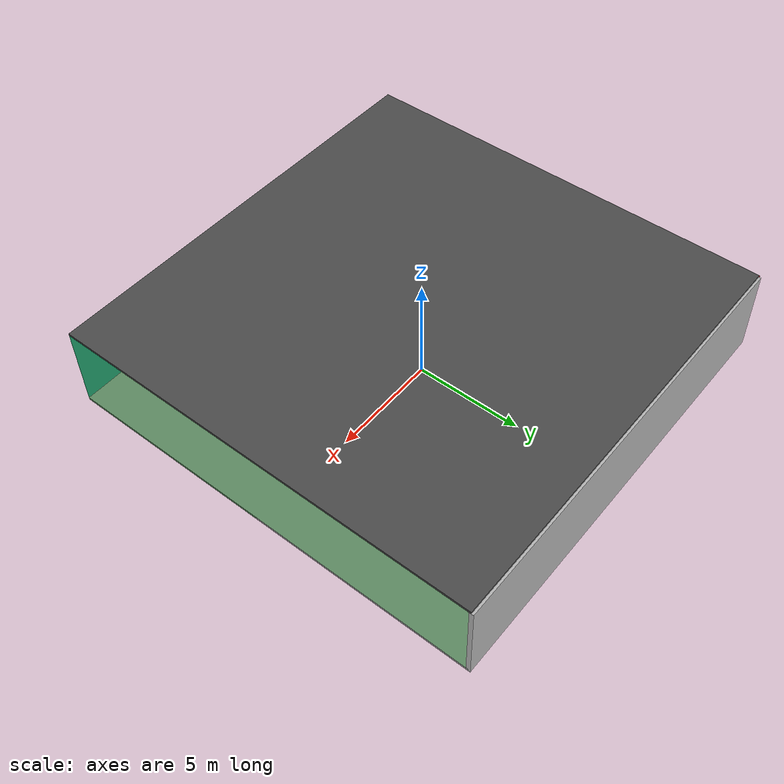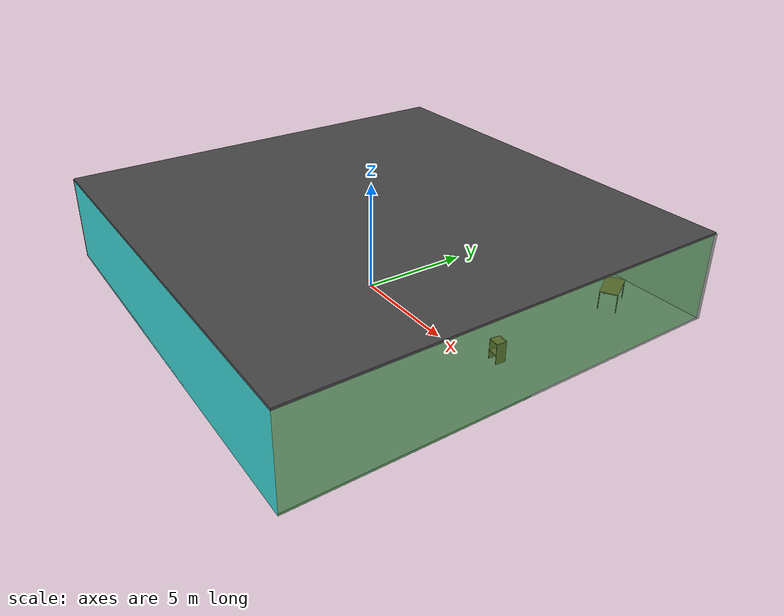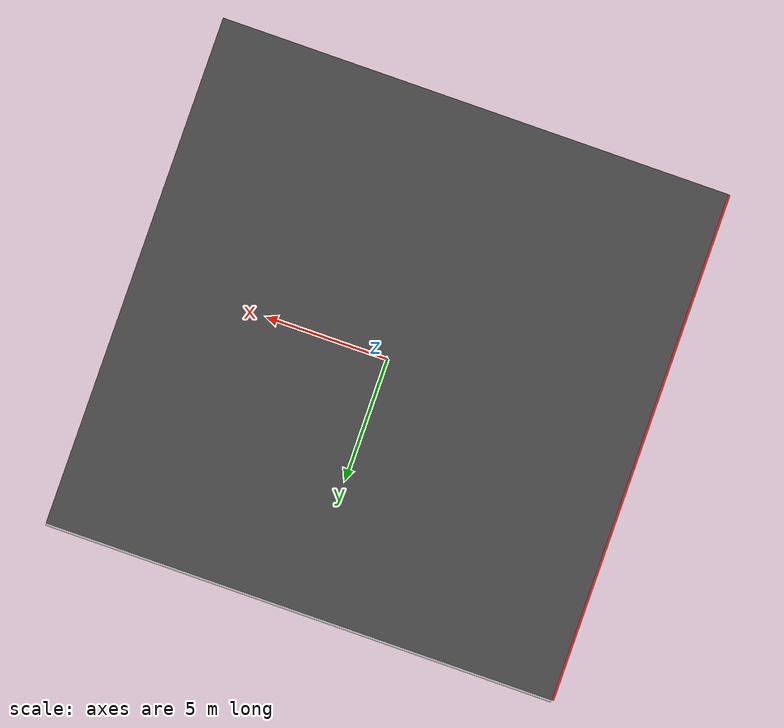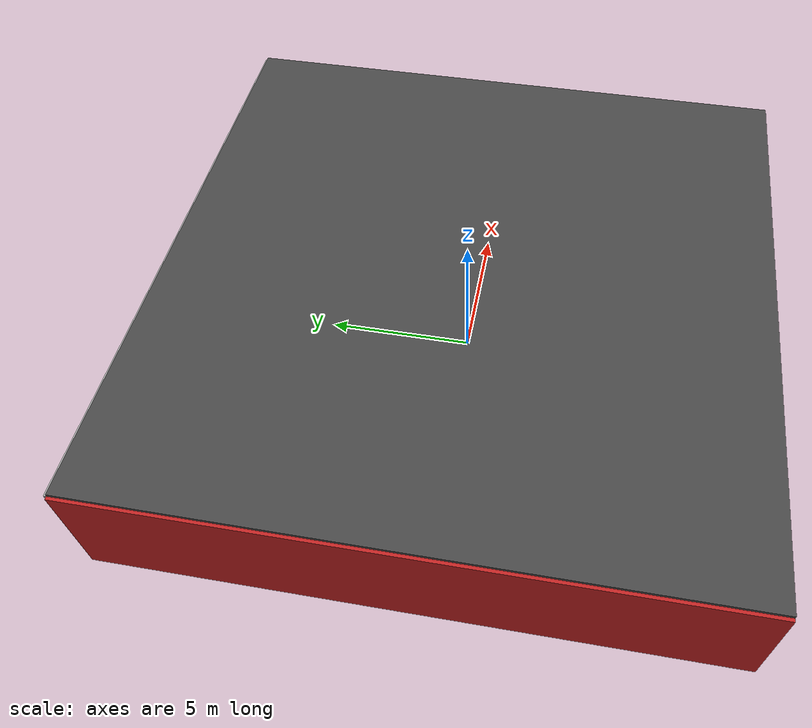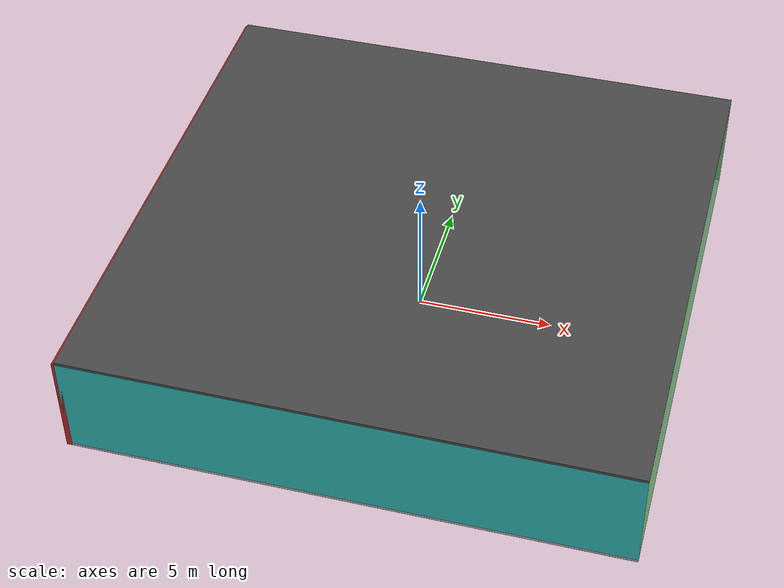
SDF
<sdf version="1.4">
 <world name="default">
  <physics type="ode">
   <max_step_size>0.001</max_step_size>
   <real_time_factor>1</real_time_factor>
   <real_time_update_rate>1000</real_time_update_rate>
   <gravity>0 0 -9.8</gravity>
  </physics>
  <scene><ambient>0.4 0.4 0.4 1</ambient><background>0.7 0.7 0.7 1</background><shadows>1</shadows></scene>
  <model name="Surrounding">
   <static>1</static>
   <link name="Ceiling">
    <collision name="Ceiling_Collision"><geometry><box><size>20 20 0.1</size></box></geometry></collision>
    <visual name="Ceiling_Visual">
     <geometry><box><size>20 20 0.1</size></box></geometry>
     <material>
      <script><uri>file://media/materials/scripts/gazebo.material</uri><name>Gazebo/Road</name></script>
     </material>
    </visual>
    <pose>0 0 4.05 0 0 0</pose>
   </link>
   <link name="Wall_South">
    <collision name="Wall_South_Collision">
     <geometry><box><size>20 0 4</size></box></geometry>
     <pose>0 0 2 0 -0 0</pose>
    </collision>
    <visual name="Wall_South_Visual">
     <pose>0 0 2 0 -0 0</pose>
     <geometry><box><size>20 0 4</size></box></geometry>
     <material>
      <script><uri>file://media/materials/scripts/gazebo.material</uri><name>Gazebo/TurquoiseGlow</name></script>
     </material>
    </visual>
    <velocity_decay><linear>0</linear><angular>0</angular></velocity_decay>
    <pose>0 -10 0 0 -0 0</pose>
   </link>
   <link name="Wall_East">
    <collision name="Wall_21_Collision">
     <geometry><box><size>20 0 4</size></box></geometry>
     <pose>0 0 2 0 -0 0</pose>
    </collision>
    <visual name="Wall_21_Visual">
     <pose>0 0 2 0 -0 0</pose>
     <geometry><box><size>20 0 4</size></box></geometry>
     <material>
      <script><uri>file://media/materials/scripts/gazebo.material</uri><name>Gazebo/GreenTransparent</name></script>
     </material>
    </visual>
    <velocity_decay><linear>0</linear><angular>0</angular></velocity_decay>
    <pose>10 0 0 0 -0 1.5708</pose>
   </link>
   <link name="Wall_North">
    <collision name="Wall_22_Collision">
     <geometry><box><size>20 0.2 4</size></box></geometry>
     <pose>0 0 2 0 -0 0</pose>
    </collision>
    <visual name="Wall_22_Visual">
     <pose>0 0 2 0 -0 0</pose>
     <geometry><box><size>20 0.2 4</size></box></geometry>
     <material>
      <script><uri>file://media/materials/scripts/gazebo.material</uri><name>Gazebo/Pioneer2Body</name></script>
     </material>
    </visual>
    <velocity_decay><linear>0</linear><angular>0</angular></velocity_decay>
    <pose>0 10 0 0 -0 0</pose>
   </link>
   <link name="Wall_West">
    <collision name="Wall_23_Collision">
     <geometry><box><size>20 0.2 4</size></box></geometry>
     <pose>0 0 2 0 -0 0</pose>
    </collision>
    <visual name="Wall_23_Visual">
     <pose>0 0 2 0 -0 0</pose>
     <geometry><box><size>20 0.2 4</size></box></geometry>
     <material>
      <script><uri>file://media/materials/scripts/gazebo.material</uri><name>Gazebo/RedGlow</name></script>
     </material>
    </visual>
    <velocity_decay><linear>0</linear><angular>0</angular></velocity_decay>
    <pose>-10 0 0 0 0 -1.5708</pose>
   </link>
   <link name="Ground_link">
    <collision name="collision">
     <pose>0 0 .05 0 -0 0</pose>
     <geometry><box><size>20 20 0.1</size></box></geometry>
    </collision>
    <visual name="visual">
     <pose>0 0 .05 0 -0 0</pose>
     <geometry><box><size>20 20 0.1</size></box></geometry>
     <material>
      <script><uri>file://media/materials/scripts/gazebo.material</uri><name>Gazebo/CloudySky</name></script>
     </material>
    </visual>
   </link>
   <static>1</static>
  </model>
  <spherical_coordinates>
   <surface_model>EARTH_WGS84</surface_model>
   <latitude_deg>0</latitude_deg>
   <longitude_deg>0</longitude_deg>
   <elevation>0</elevation>
   <heading_deg>0</heading_deg>
  </spherical_coordinates>
  <light name="lightball_0" type="diffuse">
   <diffuse>0.8 0.8 0.8 1</diffuse>
   <specular>0.2 0.2 0.2 1</specular>
   <attenuation>
    <range>100</range>
    <constant>0.7</constant>
    <linear>0.01</linear>
    <quadratic>0.001</quadratic>
   </attenuation>
   <direction>-0.5 0.1 -0.9</direction>
   <pose>-4.63412488614 -1.79282176424 3.24184227609 0 0 0</pose>
  </light>
  <light name="lightball_1" type="diffuse">
   <diffuse>0.8 0.8 0.8 1</diffuse>
   <specular>0.2 0.2 0.2 1</specular>
   <attenuation>
    <range>100</range>
    <constant>0.7</constant>
    <linear>0.01</linear>
    <quadratic>0.001</quadratic>
   </attenuation>
   <direction>-0.5 0.1 -0.9</direction>
   <pose>3.70909936568 -4.78740283516 1.81549166176 0 0 0</pose>
  </light>
  <light name="lightball_2" type="diffuse">
   <diffuse>0.8 0.8 0.8 1</diffuse>
   <specular>0.2 0.2 0.2 1</specular>
   <attenuation>
    <range>100</range>
    <constant>0.7</constant>
    <linear>0.01</linear>
    <quadratic>0.001</quadratic>
   </attenuation>
   <direction>-0.5 0.1 -0.9</direction>
   <pose>6.57487448651 8.79647723526 1.02729125433 0 0 0</pose>
  </light>
  <light name="lightball_3" type="diffuse">
   <diffuse>0.8 0.8 0.8 1</diffuse>
   <specular>0.2 0.2 0.2 1</specular>
   <attenuation>
    <range>100</range>
    <constant>0.7</constant>
    <linear>0.01</linear>
    <quadratic>0.001</quadratic>
   </attenuation>
   <direction>-0.5 0.1 -0.9</direction>
   <pose>6.0176702355 0.540401741303 2.97148096355 0 0 0</pose>
  </light>
  <light name="lightball_4" type="diffuse">
   <diffuse>0.8 0.8 0.8 1</diffuse>
   <specular>0.2 0.2 0.2 1</specular>
   <attenuation>
    <range>100</range>
    <constant>0.7</constant>
    <linear>0.01</linear>
    <quadratic>0.001</quadratic>
   </attenuation>
   <direction>-0.5 0.1 -0.9</direction>
   <pose>3.41969998587 -1.51975333536 2.82247308911 0 0 0</pose>
  </light>
  <light name="lightball_5" type="diffuse">
   <diffuse>0.8 0.8 0.8 1</diffuse>
   <specular>0.2 0.2 0.2 1</specular>
   <attenuation>
    <range>100</range>
    <constant>0.7</constant>
    <linear>0.01</linear>
    <quadratic>0.001</quadratic>
   </attenuation>
   <direction>-0.5 0.1 -0.9</direction>
   <pose>-0.523600621135 4.72313605319 1.87645278978 0 0 0</pose>
  </light>
  <light name="lightball_6" type="diffuse">
   <diffuse>0.8 0.8 0.8 1</diffuse>
   <specular>0.2 0.2 0.2 1</specular>
   <attenuation>
    <range>100</range>
    <constant>0.7</constant>
    <linear>0.01</linear>
    <quadratic>0.001</quadratic>
   </attenuation>
   <direction>-0.5 0.1 -0.9</direction>
   <pose>8.80905320771 -4.48789453335 2.72946827633 0 0 0</pose>
  </light>
  <light name="lightball_7" type="diffuse">
   <diffuse>0.8 0.8 0.8 1</diffuse>
   <specular>0.2 0.2 0.2 1</specular>
   <attenuation>
    <range>100</range>
    <constant>0.7</constant>
    <linear>0.01</linear>
    <quadratic>0.001</quadratic>
   </attenuation>
   <direction>-0.5 0.1 -0.9</direction>
   <pose>3.40941249201 0.474303694627 2.26896357716 0 0 0</pose>
  </light>
  <light name="lightball_8" type="diffuse">
   <diffuse>0.8 0.8 0.8 1</diffuse>
   <specular>0.2 0.2 0.2 1</specular>
   <attenuation>
    <range>100</range>
    <constant>0.7</constant>
    <linear>0.01</linear>
    <quadratic>0.001</quadratic>
   </attenuation>
   <direction>-0.5 0.1 -0.9</direction>
   <pose>8.3249984483 4.62443116356 2.63457630045 0 0 0</pose>
  </light>
  <light name="lightball_9" type="diffuse">
   <diffuse>0.8 0.8 0.8 1</diffuse>
   <specular>0.2 0.2 0.2 1</specular>
   <attenuation>
    <range>100</range>
    <constant>0.7</constant>
    <linear>0.01</linear>
    <quadratic>0.001</quadratic>
   </attenuation>
   <direction>-0.5 0.1 -0.9</direction>
   <pose>6.33643422966 9.75904778204 3.59750236359 0 0 0</pose>
  </light>
  <include>
   <uri>model://textured_shapes</uri>
   <pose>-4.88244282458 -7.54675222563 0 0 0 0.792791511849</pose>
  </include>
  <include><uri>model://table</uri><pose>-2.03419678842 2.12309355432 0 0 0 0.876792144873</pose></include>
  <include><uri>model://table</uri><pose>1.97494581382 4.83850126809 0 0 0 2.90496636114</pose></include>
  <include>
   <uri>model://robocup_3Dsim_goal</uri>
   <pose>4.05464782818 -7.66856345241 0 0 0 0.315725428002</pose>
  </include>
  <include><uri>model://cabinet</uri><pose>7.64679757023 0.78314762351 0 0 0 1.44693403548</pose></include>
  <include><uri>model://table</uri><pose>7.18852633394 7.70950084575 0 0 0 2.08696595569</pose></include>
 </world>
</sdf>

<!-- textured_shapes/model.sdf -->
<sdf version="1.6">
  <model name="textured_shapes">
    <pose>0 0 0.5 0 0 0</pose>
    <link name="box">
      <pose>0 -1.5 0 0 0 0</pose>
      <collision name="collision">
        <geometry>
          <box>
            <size>1 1 1</size>
          </box>
        </geometry>
      </collision>
      <visual name="visual">
        <geometry>
          <box>
            <size>1 1 1</size>
          </box>
        </geometry>
        <material>
          <script>
            <uri>model://../model_source/models/textured_shapes/materials/scripts</uri>
            <uri>model://../model_source/models/textured_shapes/materials/textures</uri>
            <name>TexturedShape/Squares</name>
          </script>
        </material>
      </visual>
    </link>
    <link name="sphere">
      <collision name="collision">
        <geometry>
          <sphere>
            <radius>0.5</radius>
          </sphere>
        </geometry>
      </collision>
      <visual name="visual">
        <geometry>
          <sphere>
            <radius>0.5</radius>
          </sphere>
        </geometry>
        <material>
          <script>
            <uri>model://../model_source/models/textured_shapes/materials/scripts</uri>
            <uri>model://../model_source/models/textured_shapes/materials/textures</uri>
            <name>TexturedShape/Squares</name>
          </script>
        </material>
      </visual>
    </link>
    <link name="cylinder">
      <pose>0 1.5 0 0 0 0</pose>
      <collision name="collision">
        <geometry>
          <cylinder>
            <radius>0.5</radius>
            <length>1</length>
          </cylinder>
        </geometry>
      </collision>
      <visual name="visual">
        <geometry>
          <cylinder>
            <radius>0.5</radius>
            <length>1</length>
          </cylinder>
        </geometry>
        <material>
          <script>
            <uri>model://../model_source/models/textured_shapes/materials/scripts</uri>
            <uri>model://../model_source/models/textured_shapes/materials/textures</uri>
            <name>TexturedShape/Squares</name>
          </script>
        </material>
      </visual>
    </link>
  </model>
</sdf>

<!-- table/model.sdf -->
<sdf version="1.5">
  <model name="table">
    <static>true</static>
    <link name="link">
      <collision name="surface">
        <pose>0 0 1.0 0 0 0</pose>
        <geometry>
          <box>
            <size>1.5 0.8 0.03</size>
          </box>
        </geometry>
        <surface>
          <friction>
            <ode>
              <mu>0.6</mu>
              <mu2>0.6</mu2>
            </ode>
          </friction>
        </surface>
      </collision>
      <visual name="visual1">
        <pose>0 0 1.0 0 0 0</pose>
        <geometry>
          <box>
            <size>1.5 0.8 0.03</size>
          </box>
        </geometry>
        <material>
          <script>
            <uri>model://media/materials/scripts/gazebo.material</uri>
            <name>Gazebo/Wood</name>
          </script>
        </material>
      </visual>
      <collision name="front_left_leg">
        <pose>0.68 0.38 0.5 0 0 0</pose>
        <geometry>
          <cylinder>
            <radius>0.02</radius>
            <length>1.0</length>
          </cylinder>
        </geometry>
      </collision>
      <visual name="front_left_leg">
        <pose>0.68 0.38 0.5 0 0 0</pose>
        <geometry>
          <cylinder>
            <radius>0.02</radius>
            <length>1.0</length>
          </cylinder>
        </geometry>
        <material>
          <script>
            <uri>model://media/materials/scripts/gazebo.material</uri>
            <name>Gazebo/Grey</name>
          </script>
        </material>
      </visual>
      <collision name="front_right_leg">
        <pose>0.68 -0.38 0.5 0 0 0</pose>
        <geometry>
          <cylinder>
            <radius>0.02</radius>
            <length>1.0</length>
          </cylinder>
        </geometry>
      </collision>
      <visual name="front_right_leg">
        <pose>0.68 -0.38 0.5 0 0 0</pose>
        <geometry>
          <cylinder>
            <radius>0.02</radius>
            <length>1.0</length>
          </cylinder>
        </geometry>
        <material>
          <script>
            <uri>model://media/materials/scripts/gazebo.material</uri>
            <name>Gazebo/Grey</name>
          </script>
        </material>
      </visual>
      <collision name="back_right_leg">
        <pose>-0.68 -0.38 0.5 0 0 0</pose>
        <geometry>
          <cylinder>
            <radius>0.02</radius>
            <length>1.0</length>
          </cylinder>
        </geometry>
      </collision>
      <visual name="back_right_leg">
        <pose>-0.68 -0.38 0.5 0 0 0</pose>
        <geometry>
          <cylinder>
            <radius>0.02</radius>
            <length>1.0</length>
          </cylinder>
        </geometry>
        <material>
          <script>
            <uri>model://media/materials/scripts/gazebo.material</uri>
            <name>Gazebo/Grey</name>
          </script>
        </material>
      </visual>
      <collision name="back_left_leg">
        <pose>-0.68 0.38 0.5 0 0 0</pose>
        <geometry>
          <cylinder>
            <radius>0.02</radius>
            <length>1.0</length>
          </cylinder>
        </geometry>
      </collision>
      <visual name="back_left_leg">
        <pose>-0.68 0.38 0.5 0 0 0</pose>
        <geometry>
          <cylinder>
            <radius>0.02</radius>
            <length>1.0</length>
          </cylinder>
        </geometry>
        <material>
          <script>
            <uri>model://media/materials/scripts/gazebo.material</uri>
            <name>Gazebo/Grey</name>
          </script>
        </material>
      </visual>
    </link>
  </model>
</sdf>

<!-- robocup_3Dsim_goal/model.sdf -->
<sdf version="1.5">
  <model name="robocup_3d_goal">
    <static>true</static>
    <link name="left_post">
      <pose>0 1.05 0.45 0 0 0</pose>
      <collision name="collision">
        <geometry>
          <cylinder>
            <radius>0.05</radius>
            <length>0.9</length>
          </cylinder>
        </geometry>
      </collision>
      <visual name="visual">
        <geometry>
          <cylinder>
            <radius>0.05</radius>
            <length>0.9</length>
          </cylinder>
        </geometry>
        <material>
          <script>
            <uri>file://media/materials/scripts/gazebo.material</uri>
            <name>Gazebo/ZincYellow</name>
          </script>
        </material>
      </visual>
    </link>
    <link name="left_support_horiz_lower">
      <pose>0.30 1.05 0.01 0 0 0</pose>
      <collision name="collision">
        <geometry>
          <box>
            <size>0.50 0.02 0.02</size>
          </box>
        </geometry>
      </collision>
      <visual name="visual">
        <geometry>
          <box>
            <size>0.50 0.02 0.02</size>
          </box>
        </geometry>
        <material>
          <script>
            <uri>file://media/materials/scripts/gazebo.material</uri>
            <name>Gazebo/White</name>
          </script>
        </material>
      </visual>
    </link>
    <link name="left_support_horiz_upper">
      <pose>0.30 1.05 0.79 0 0 0</pose>
      <collision name="collision">
        <geometry>
          <box>
            <size>0.50 0.02 0.02</size>
          </box>
        </geometry>
      </collision>
      <visual name="visual">
        <geometry>
          <box>
            <size>0.50 0.02 0.02</size>
          </box>
        </geometry>
        <material>
          <script>
            <uri>file://media/materials/scripts/gazebo.material</uri>
            <name>Gazebo/White</name>
          </script>
        </material>
      </visual>
    </link>
    <link name="left_support_vertical">
      <pose>0.56 1.05 0.4 0 1.5708 0</pose>
      <collision name="collision">
        <geometry>
          <box>
            <size>0.80 0.02 0.02</size>
          </box>
        </geometry>
      </collision>
      <visual name="visual">
        <geometry>
          <box>
            <size>0.80 0.02 0.02</size>
          </box>
        </geometry>
        <material>
          <script>
            <uri>file://media/materials/scripts/gazebo.material</uri>
            <name>Gazebo/White</name>
          </script>
        </material>
      </visual>
    </link>
    <link name="right_support_horiz_lower">
      <pose>0.30 -1.05 0.01 0 0 0</pose>
      <collision name="collision">
        <geometry>
          <box>
            <size>0.50 0.02 0.02</size>
          </box>
        </geometry>
      </collision>
      <visual name="visual">
        <geometry>
          <box>
            <size>0.50 0.02 0.02</size>
          </box>
        </geometry>
        <material>
          <script>
            <uri>file://media/materials/scripts/gazebo.material</uri>
            <name>Gazebo/White</name>
          </script>
        </material>
      </visual>
    </link>
    <link name="right_support_horiz_upper">
      <pose>0.30 -1.05 0.79 0 0 0</pose>
      <collision name="collision">
        <geometry>
          <box>
            <size>0.50 0.02 0.02</size>
          </box>
        </geometry>
      </collision>
      <visual name="visual">
        <geometry>
          <box>
            <size>0.50 0.02 0.02</size>
          </box>
        </geometry>
        <material>
          <script>
            <uri>file://media/materials/scripts/gazebo.material</uri>
            <name>Gazebo/White</name>
          </script>
        </material>
      </visual>
    </link>
    <link name="right_support_vertical">
      <pose>0.56 -1.05 0.4 0 1.5708 0</pose>
      <collision name="collision">
        <geometry>
          <box>
            <size>0.80 0.02 0.02</size>
          </box>
        </geometry>
      </collision>
      <visual name="visual">
        <geometry>
          <box>
            <size>0.80 0.02 0.02</size>
          </box>
        </geometry>
        <material>
          <script>
            <uri>file://media/materials/scripts/gazebo.material</uri>
            <name>Gazebo/White</name>
          </script>
        </material>
      </visual>
    </link>
    <link name="center_support_horiz_lower">
      <pose>0.56 0 0.01 0 1.5708 0</pose>
      <collision name="collision">
        <geometry>
          <box>
            <size>0.02 2.08 0.02</size>
          </box>
        </geometry>
      </collision>
      <visual name="visual">
        <geometry>
          <box>
            <size>0.02 2.08 0.02</size>
          </box>
        </geometry>
        <material>
          <script>
            <uri>file://media/materials/scripts/gazebo.material</uri>
            <name>Gazebo/White</name>
          </script>
        </material>
      </visual>
    </link>
    <link name="center_support_horiz_upper">
      <pose>0.56 0 0.79 0 1.5708 0</pose>
      <collision name="collision">
        <geometry>
          <box>
            <size>0.02 2.08 0.02</size>
          </box>
        </geometry>
      </collision>
      <visual name="visual">
        <geometry>
          <box>
            <size>0.02 2.08 0.02</size>
          </box>
        </geometry>
        <material>
          <script>
            <uri>file://media/materials/scripts/gazebo.material</uri>
            <name>Gazebo/White</name>
          </script>
        </material>
      </visual>
    </link>
    <link name="right_post">
      <pose>0 -1.05 0.45 0 0 0</pose>
      <collision name="collision">
        <geometry>
          <cylinder>
            <radius>0.05</radius>
            <length>0.9</length>
          </cylinder>
        </geometry>
      </collision>
      <visual name="visual">
        <geometry>
          <cylinder>
            <radius>0.05</radius>
            <length>0.9</length>
          </cylinder>
        </geometry>
        <material>
          <script>
            <uri>file://media/materials/scripts/gazebo.material</uri>
            <name>Gazebo/ZincYellow</name>
          </script>
        </material>
      </visual>
    </link>
    <link name="crossbar">
      <pose>0 0 0.85 1.57 1.57 0</pose>
      <collision name="collision">
        <geometry>
          <cylinder>
            <radius>0.05</radius>
            <length>2.0</length>
          </cylinder>
        </geometry>
      </collision>
      <visual name="visual">
        <geometry>
          <cylinder>
            <radius>0.05</radius>
            <length>2.0</length>
          </cylinder>
        </geometry>
        <material>
          <script>
            <uri>file://media/materials/scripts/gazebo.material</uri>
            <name>Gazebo/ZincYellow</name>
          </script>
        </material>
      </visual>
    </link>
    <link name="center_net">
      <pose>0.56 0 0.40 0 0 0</pose>
      <collision name="collision">
        <geometry>
          <box>
            <size>0.01 2.1 0.80</size>
          </box>
        </geometry>
      </collision>
      <visual name="visual">
        <geometry>
          <box>
            <size>0.01 2.1 0.80</size>
          </box>
        </geometry>
        <material>
          <script>
            <uri>model://../model_source/models/robocup09_spl_field/materials/scripts/</uri>
            <uri>model://../model_source/models/robocup09_spl_field/materials/textures/</uri>
            <name>RoboCup/Net</name>
          </script>
        </material>
      </visual>
    </link>
    <link name="left_net">
      <pose>0.30 1.05 0.40 0 0 0</pose>
      <collision name="collision">
        <geometry>
          <box>
            <size>0.50 0.01 0.76</size>
          </box>
        </geometry>
      </collision>
      <visual name="visual">
        <geometry>
          <box>
            <size>0.50 0.01 0.76</size>
          </box>
        </geometry>
        <material>
          <script>
            <uri>model://../model_source/models/robocup09_spl_field/materials/scripts/</uri>
            <uri>model://../model_source/models/robocup09_spl_field/materials/textures/</uri>
            <name>RoboCup/Net</name>
          </script>
        </material>
      </visual>
    </link>
    <link name="right_net">
      <pose>0.30 -1.05 0.40 0 0 0</pose>
      <collision name="collision">
        <geometry>
          <box>
            <size>0.50 0.01 0.76</size>
          </box>
        </geometry>
      </collision>
      <visual name="visual">
        <geometry>
          <box>
            <size>0.50 0.01 0.76</size>
          </box>
        </geometry>
        <material>
          <script>
            <uri>model://../model_source/models/robocup09_spl_field/materials/scripts/</uri>
            <uri>model://../model_source/models/robocup09_spl_field/materials/textures/</uri>
            <name>RoboCup/Net</name>
          </script>
        </material>
      </visual>
    </link>
  </model>
</sdf>

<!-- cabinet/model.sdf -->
<sdf version="1.5">
  <model name="cabinet">
    <static>true</static>
    <link name="cabinet_bottom_plate">
      <inertial>
        <pose>0 0 -1 0 0 0</pose>
        <inertia>
          <ixx>2.050000</ixx>
          <ixy>0</ixy>
          <ixz>0</ixz>
          <iyy>2.050000</iyy>
          <iyz>0</iyz>
          <izz>2.050000</izz>
        </inertia>
        <mass>25.000000</mass>
      </inertial>
      <collision name="cabinet_bottom_plate_geom">
        <pose>0 0 0.010000 0 0 0</pose>
        <geometry>
          <box>
            <size>0.450000 0.450000 0.020000</size>
          </box>
        </geometry>
      </collision>
      <visual name="cabinet_bottom_plate_geom_visual">
        <pose>0 0 0.010000 0 0 0</pose>
        <geometry>
          <box>
            <size>0.450000 0.450000 0.020000</size>
          </box>
        </geometry>
        <material>
          <script>
            <uri>model://media/materials/scripts/gazebo.material</uri>
            <name>Gazebo/Wood</name>
          </script>
        </material>
      </visual>
      <collision name="cabinet_bottom_plate_geom_cabinet_back_plate">
        <pose>0.235000 0 0.510000 0 0 0</pose>
        <geometry>
          <box>
            <size>0.020000 0.450000 1.020000</size>
          </box>
        </geometry>
      </collision>
      <visual name="cabinet_bottom_plate_geom_cabinet_back_plate_visual">
        <pose>0.235000 0 0.510000 0 0 0</pose>
        <geometry>
          <box>
            <size>0.020000 0.450000 1.020000</size>
          </box>
        </geometry>
        <material>
          <script>
            <uri>model://media/materials/scripts/gazebo.material</uri>
            <name>Gazebo/Wood</name>
          </script>
        </material>
      </visual>
      <collision name="cabinet_bottom_plate_geom_cabinet_left_plate">
        <pose>0 0.235000 0.510000 0 0 0</pose>
        <geometry>
          <box>
            <size>0.450000 0.020000 1.020000</size>
          </box>
        </geometry>
      </collision>
      <visual name="cabinet_bottom_plate_geom_cabinet_left_plate_visual">
        <pose>0 0.235000 0.510000 0 0 0</pose>
        <geometry>
          <box>
            <size>0.450000 0.020000 1.020000</size>
          </box>
        </geometry>
        <material>
          <script>
            <uri>model://media/materials/scripts/gazebo.material</uri>
            <name>Gazebo/Wood</name>
          </script>
        </material>
      </visual>
      <collision name="cabinet_bottom_plate_geom_cabinet_middle_plate">
        <pose>0 0 0.510000 0 0 0</pose>
        <geometry>
          <box>
            <size>0.450000 0.450000 0.020000</size>
          </box>
        </geometry>
      </collision>
      <visual name="cabinet_bottom_plate_geom_cabinet_middle_plate_visual">
        <pose>0 0 0.510000 0 0 0</pose>
        <geometry>
          <box>
            <size>0.450000 0.450000 0.020000</size>
          </box>
        </geometry>
        <material>
          <script>
            <uri>model://media/materials/scripts/gazebo.material</uri>
            <name>Gazebo/Wood</name>
          </script>
        </material>
      </visual>
      <collision name="cabinet_bottom_plate_geom_cabinet_right_plate">
        <pose>0 -0.235000 0.510000 0 0 0</pose>
        <geometry>
          <box>
            <size>0.450000 0.020000 1.020000</size>
          </box>
        </geometry>
      </collision>
      <visual name="cabinet_bottom_plate_geom_cabinet_right_plate_visual">
        <pose>0 -0.235000 0.510000 0 0 0</pose>
        <geometry>
          <box>
            <size>0.450000 0.020000 1.020000</size>
          </box>
        </geometry>
        <material>
          <script>
            <uri>model://media/materials/scripts/gazebo.material</uri>
            <name>Gazebo/Wood</name>
          </script>
        </material>
      </visual>
      <collision name="cabinet_bottom_plate_geom_cabinet_top_plate">
        <pose>0 0 1.010000 0 0 0</pose>
        <geometry>
          <box>
            <size>0.450000 0.450000 0.020000</size>
          </box>
        </geometry>
      </collision>
      <visual name="cabinet_bottom_plate_geom_cabinet_top_plate_visual">
        <pose>0 0 1.010000 0 0 0</pose>
        <geometry>
          <box>
            <size>0.450000 0.450000 0.020000</size>
          </box>
        </geometry>
        <material>
          <script>
            <uri>model://media/materials/scripts/gazebo.material</uri>
            <name>Gazebo/Wood</name>
          </script>
        </material>
      </visual>
    </link>
  </model>
</sdf>
